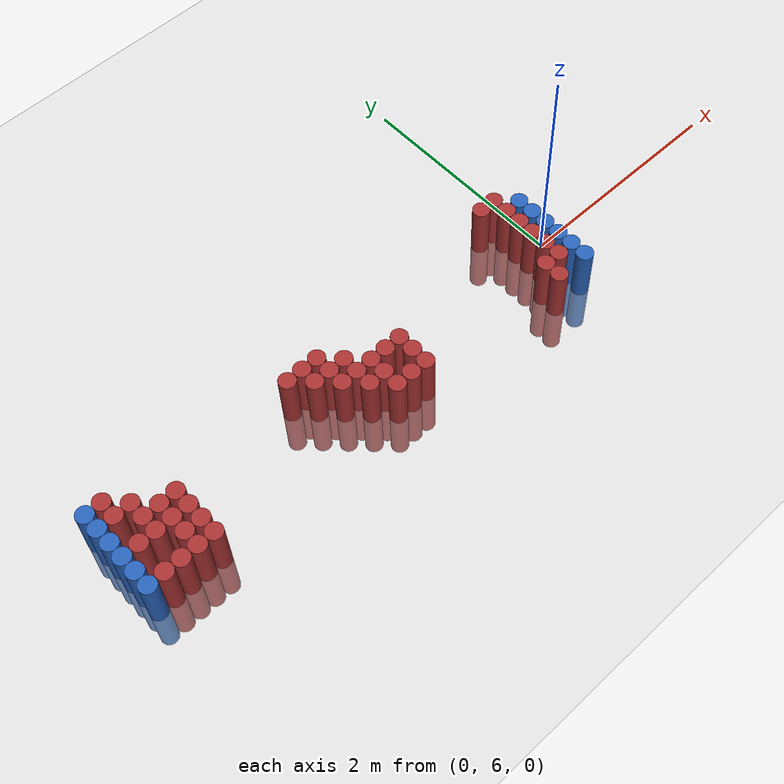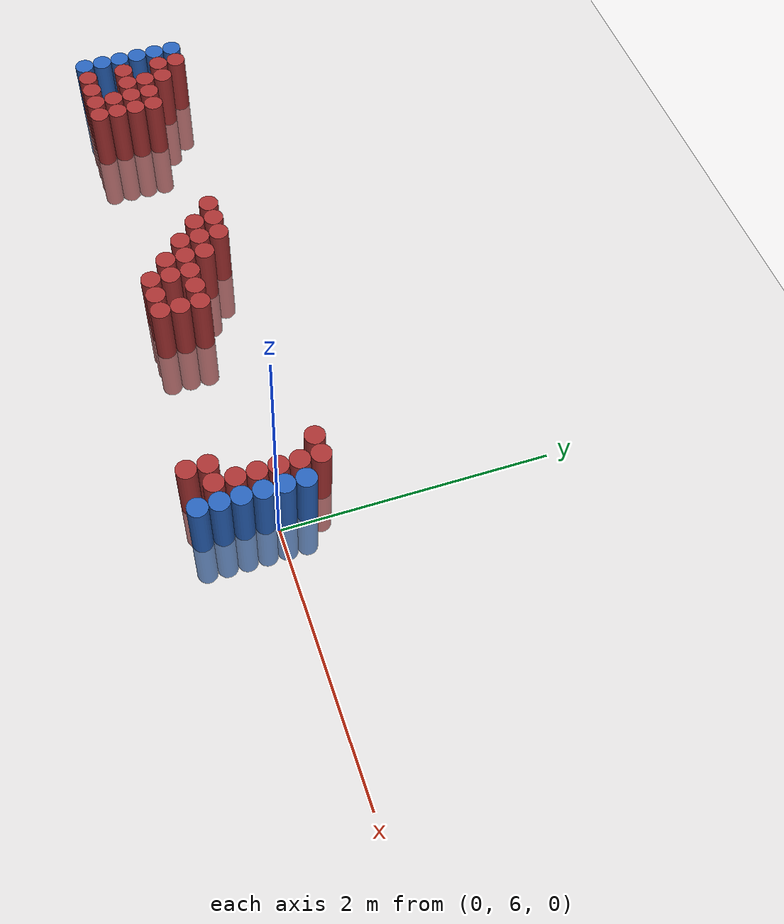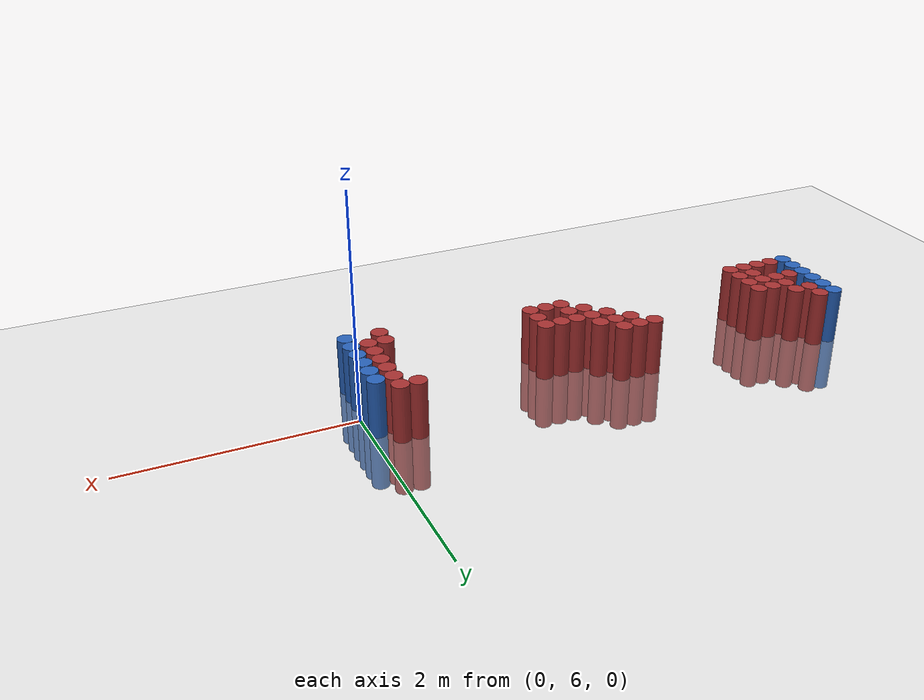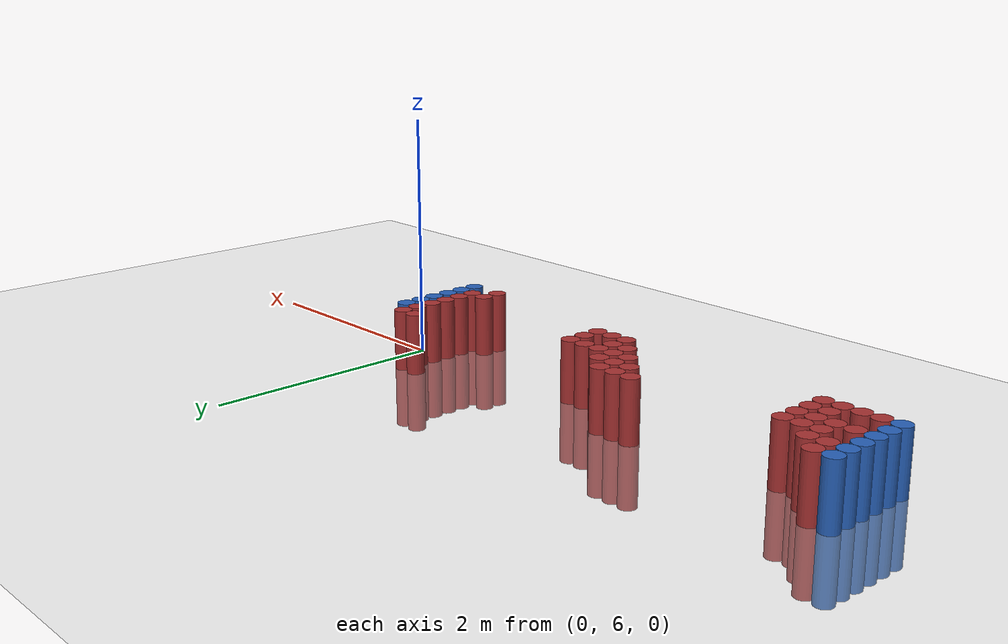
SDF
<sdf version="1.6">
 <world name="default">
  <model name="ground_plane">
   <static>1</static>
   <link name="link">
    <collision name="collision">
     <geometry><plane><normal>0 0 1</normal><size>100 100</size></plane></geometry>
     <surface><friction><ode><mu>100</mu><mu2>50</mu2></ode></friction></surface>
    </collision>
    <visual name="visual">
     <cast_shadows>0</cast_shadows>
     <geometry><plane><normal>0 0 1</normal><size>100 100</size></plane></geometry>
     <material>
      <script><uri>file://media/materials/scripts/gazebo.material</uri><name>Gazebo/Grey</name></script>
     </material>
    </visual>
   </link>
  </model>
  <model name="unit_cylinder_99">
   <static>1</static>
   <pose>-4.425000 5.625000 0.000000 0.000000 0.000000 0.000000</pose>
   <link name="link">
    <inertial>
     <mass>1</mass>
     <inertia><ixx>0.145833</ixx><ixy>0</ixy><ixz>0</ixz><iyy>0.145833</iyy><iyz>0</iyz><izz>0.125</izz></inertia>
    </inertial>
    <collision name="collision">
     <geometry><cylinder><radius>0.075000</radius><length>1</length></cylinder></geometry>
    </collision>
    <visual name="visual">
     <geometry><cylinder><radius>0.075000</radius><length>1</length></cylinder></geometry>
     <material>
      <ambient>0.152000 0.379000 0.720000 1</ambient>
      <diffuse>0.152000 0.379000 0.720000 1</diffuse>
     </material>
     <material>
      <script><name>Gazebo/Grey</name><uri>file://media/materials/scripts/gazebo.material</uri></script>
     </material>
    </visual>
   </link>
  </model>
  <model name="unit_cylinder_100">
   <static>1</static>
   <pose>-4.425000 5.775000 0.000000 0.000000 0.000000 0.000000</pose>
   <link name="link">
    <inertial>
     <mass>1</mass>
     <inertia><ixx>0.145833</ixx><ixy>0</ixy><ixz>0</ixz><iyy>0.145833</iyy><iyz>0</iyz><izz>0.125</izz></inertia>
    </inertial>
    <collision name="collision">
     <geometry><cylinder><radius>0.075000</radius><length>1</length></cylinder></geometry>
    </collision>
    <visual name="visual">
     <geometry><cylinder><radius>0.075000</radius><length>1</length></cylinder></geometry>
     <material>
      <ambient>0.152000 0.379000 0.720000 1</ambient>
      <diffuse>0.152000 0.379000 0.720000 1</diffuse>
     </material>
     <material>
      <script><name>Gazebo/Grey</name><uri>file://media/materials/scripts/gazebo.material</uri></script>
     </material>
    </visual>
   </link>
  </model>
  <model name="unit_cylinder_101">
   <static>1</static>
   <pose>-4.425000 5.925000 0.000000 0.000000 0.000000 0.000000</pose>
   <link name="link">
    <inertial>
     <mass>1</mass>
     <inertia><ixx>0.145833</ixx><ixy>0</ixy><ixz>0</ixz><iyy>0.145833</iyy><iyz>0</iyz><izz>0.125</izz></inertia>
    </inertial>
    <collision name="collision">
     <geometry><cylinder><radius>0.075000</radius><length>1</length></cylinder></geometry>
    </collision>
    <visual name="visual">
     <geometry><cylinder><radius>0.075000</radius><length>1</length></cylinder></geometry>
     <material>
      <ambient>0.152000 0.379000 0.720000 1</ambient>
      <diffuse>0.152000 0.379000 0.720000 1</diffuse>
     </material>
     <material>
      <script><name>Gazebo/Grey</name><uri>file://media/materials/scripts/gazebo.material</uri></script>
     </material>
    </visual>
   </link>
  </model>
  <model name="unit_cylinder_102">
   <static>1</static>
   <pose>-4.425000 6.075000 0.000000 0.000000 0.000000 0.000000</pose>
   <link name="link">
    <inertial>
     <mass>1</mass>
     <inertia><ixx>0.145833</ixx><ixy>0</ixy><ixz>0</ixz><iyy>0.145833</iyy><iyz>0</iyz><izz>0.125</izz></inertia>
    </inertial>
    <collision name="collision">
     <geometry><cylinder><radius>0.075000</radius><length>1</length></cylinder></geometry>
    </collision>
    <visual name="visual">
     <geometry><cylinder><radius>0.075000</radius><length>1</length></cylinder></geometry>
     <material>
      <ambient>0.152000 0.379000 0.720000 1</ambient>
      <diffuse>0.152000 0.379000 0.720000 1</diffuse>
     </material>
     <material>
      <script><name>Gazebo/Grey</name><uri>file://media/materials/scripts/gazebo.material</uri></script>
     </material>
    </visual>
   </link>
  </model>
  <model name="unit_cylinder_103">
   <static>1</static>
   <pose>-4.425000 6.225000 0.000000 0.000000 0.000000 0.000000</pose>
   <link name="link">
    <inertial>
     <mass>1</mass>
     <inertia><ixx>0.145833</ixx><ixy>0</ixy><ixz>0</ixz><iyy>0.145833</iyy><iyz>0</iyz><izz>0.125</izz></inertia>
    </inertial>
    <collision name="collision">
     <geometry><cylinder><radius>0.075000</radius><length>1</length></cylinder></geometry>
    </collision>
    <visual name="visual">
     <geometry><cylinder><radius>0.075000</radius><length>1</length></cylinder></geometry>
     <material>
      <ambient>0.152000 0.379000 0.720000 1</ambient>
      <diffuse>0.152000 0.379000 0.720000 1</diffuse>
     </material>
     <material>
      <script><name>Gazebo/Grey</name><uri>file://media/materials/scripts/gazebo.material</uri></script>
     </material>
    </visual>
   </link>
  </model>
  <model name="unit_cylinder_104">
   <static>1</static>
   <pose>-4.425000 6.375000 0.000000 0.000000 0.000000 0.000000</pose>
   <link name="link">
    <inertial>
     <mass>1</mass>
     <inertia><ixx>0.145833</ixx><ixy>0</ixy><ixz>0</ixz><iyy>0.145833</iyy><iyz>0</iyz><izz>0.125</izz></inertia>
    </inertial>
    <collision name="collision">
     <geometry><cylinder><radius>0.075000</radius><length>1</length></cylinder></geometry>
    </collision>
    <visual name="visual">
     <geometry><cylinder><radius>0.075000</radius><length>1</length></cylinder></geometry>
     <material>
      <ambient>0.152000 0.379000 0.720000 1</ambient>
      <diffuse>0.152000 0.379000 0.720000 1</diffuse>
     </material>
     <material>
      <script><name>Gazebo/Grey</name><uri>file://media/materials/scripts/gazebo.material</uri></script>
     </material>
    </visual>
   </link>
  </model>
  <model name="unit_cylinder_128">
   <static>1</static>
   <pose>-4.275000 5.625000 0.000000 0.000000 0.000000 0.000000</pose>
   <link name="link">
    <inertial>
     <mass>1</mass>
     <inertia><ixx>0.145833</ixx><ixy>0</ixy><ixz>0</ixz><iyy>0.145833</iyy><iyz>0</iyz><izz>0.125</izz></inertia>
    </inertial>
    <collision name="collision">
     <geometry><cylinder><radius>0.075000</radius><length>1</length></cylinder></geometry>
    </collision>
    <visual name="visual">
     <geometry><cylinder><radius>0.075000</radius><length>1</length></cylinder></geometry>
     <material>
      <ambient>0.648000 0.192000 0.192000 1</ambient>
      <diffuse>0.648000 0.192000 0.192000 1</diffuse>
     </material>
     <material>
      <script><name>Gazebo/Grey</name><uri>file://media/materials/scripts/gazebo.material</uri></script>
     </material>
    </visual>
   </link>
  </model>
  <model name="unit_cylinder_129">
   <static>1</static>
   <pose>-4.275000 5.925000 0.000000 0.000000 0.000000 0.000000</pose>
   <link name="link">
    <inertial>
     <mass>1</mass>
     <inertia><ixx>0.145833</ixx><ixy>0</ixy><ixz>0</ixz><iyy>0.145833</iyy><iyz>0</iyz><izz>0.125</izz></inertia>
    </inertial>
    <collision name="collision">
     <geometry><cylinder><radius>0.075000</radius><length>1</length></cylinder></geometry>
    </collision>
    <visual name="visual">
     <geometry><cylinder><radius>0.075000</radius><length>1</length></cylinder></geometry>
     <material>
      <ambient>0.648000 0.192000 0.192000 1</ambient>
      <diffuse>0.648000 0.192000 0.192000 1</diffuse>
     </material>
     <material>
      <script><name>Gazebo/Grey</name><uri>file://media/materials/scripts/gazebo.material</uri></script>
     </material>
    </visual>
   </link>
  </model>
  <model name="unit_cylinder_130">
   <static>1</static>
   <pose>-4.275000 6.225000 0.000000 0.000000 0.000000 0.000000</pose>
   <link name="link">
    <inertial>
     <mass>1</mass>
     <inertia><ixx>0.145833</ixx><ixy>0</ixy><ixz>0</ixz><iyy>0.145833</iyy><iyz>0</iyz><izz>0.125</izz></inertia>
    </inertial>
    <collision name="collision">
     <geometry><cylinder><radius>0.075000</radius><length>1</length></cylinder></geometry>
    </collision>
    <visual name="visual">
     <geometry><cylinder><radius>0.075000</radius><length>1</length></cylinder></geometry>
     <material>
      <ambient>0.648000 0.192000 0.192000 1</ambient>
      <diffuse>0.648000 0.192000 0.192000 1</diffuse>
     </material>
     <material>
      <script><name>Gazebo/Grey</name><uri>file://media/materials/scripts/gazebo.material</uri></script>
     </material>
    </visual>
   </link>
  </model>
  <model name="unit_cylinder_131">
   <static>1</static>
   <pose>-4.275000 6.375000 0.000000 0.000000 0.000000 0.000000</pose>
   <link name="link">
    <inertial>
     <mass>1</mass>
     <inertia><ixx>0.145833</ixx><ixy>0</ixy><ixz>0</ixz><iyy>0.145833</iyy><iyz>0</iyz><izz>0.125</izz></inertia>
    </inertial>
    <collision name="collision">
     <geometry><cylinder><radius>0.075000</radius><length>1</length></cylinder></geometry>
    </collision>
    <visual name="visual">
     <geometry><cylinder><radius>0.075000</radius><length>1</length></cylinder></geometry>
     <material>
      <ambient>0.648000 0.192000 0.192000 1</ambient>
      <diffuse>0.648000 0.192000 0.192000 1</diffuse>
     </material>
     <material>
      <script><name>Gazebo/Grey</name><uri>file://media/materials/scripts/gazebo.material</uri></script>
     </material>
    </visual>
   </link>
  </model>
  <model name="unit_cylinder_151">
   <static>1</static>
   <pose>-4.125000 5.625000 0.000000 0.000000 0.000000 0.000000</pose>
   <link name="link">
    <inertial>
     <mass>1</mass>
     <inertia><ixx>0.145833</ixx><ixy>0</ixy><ixz>0</ixz><iyy>0.145833</iyy><iyz>0</iyz><izz>0.125</izz></inertia>
    </inertial>
    <collision name="collision">
     <geometry><cylinder><radius>0.075000</radius><length>1</length></cylinder></geometry>
    </collision>
    <visual name="visual">
     <geometry><cylinder><radius>0.075000</radius><length>1</length></cylinder></geometry>
     <material>
      <ambient>0.648000 0.192000 0.192000 1</ambient>
      <diffuse>0.648000 0.192000 0.192000 1</diffuse>
     </material>
     <material>
      <script><name>Gazebo/Grey</name><uri>file://media/materials/scripts/gazebo.material</uri></script>
     </material>
    </visual>
   </link>
  </model>
  <model name="unit_cylinder_152">
   <static>1</static>
   <pose>-4.125000 5.925000 0.000000 0.000000 0.000000 0.000000</pose>
   <link name="link">
    <inertial>
     <mass>1</mass>
     <inertia><ixx>0.145833</ixx><ixy>0</ixy><ixz>0</ixz><iyy>0.145833</iyy><iyz>0</iyz><izz>0.125</izz></inertia>
    </inertial>
    <collision name="collision">
     <geometry><cylinder><radius>0.075000</radius><length>1</length></cylinder></geometry>
    </collision>
    <visual name="visual">
     <geometry><cylinder><radius>0.075000</radius><length>1</length></cylinder></geometry>
     <material>
      <ambient>0.648000 0.192000 0.192000 1</ambient>
      <diffuse>0.648000 0.192000 0.192000 1</diffuse>
     </material>
     <material>
      <script><name>Gazebo/Grey</name><uri>file://media/materials/scripts/gazebo.material</uri></script>
     </material>
    </visual>
   </link>
  </model>
  <model name="unit_cylinder_153">
   <static>1</static>
   <pose>-4.125000 6.075000 0.000000 0.000000 0.000000 0.000000</pose>
   <link name="link">
    <inertial>
     <mass>1</mass>
     <inertia><ixx>0.145833</ixx><ixy>0</ixy><ixz>0</ixz><iyy>0.145833</iyy><iyz>0</iyz><izz>0.125</izz></inertia>
    </inertial>
    <collision name="collision">
     <geometry><cylinder><radius>0.075000</radius><length>1</length></cylinder></geometry>
    </collision>
    <visual name="visual">
     <geometry><cylinder><radius>0.075000</radius><length>1</length></cylinder></geometry>
     <material>
      <ambient>0.648000 0.192000 0.192000 1</ambient>
      <diffuse>0.648000 0.192000 0.192000 1</diffuse>
     </material>
     <material>
      <script><name>Gazebo/Grey</name><uri>file://media/materials/scripts/gazebo.material</uri></script>
     </material>
    </visual>
   </link>
  </model>
  <model name="unit_cylinder_154">
   <static>1</static>
   <pose>-4.125000 6.225000 0.000000 0.000000 0.000000 0.000000</pose>
   <link name="link">
    <inertial>
     <mass>1</mass>
     <inertia><ixx>0.145833</ixx><ixy>0</ixy><ixz>0</ixz><iyy>0.145833</iyy><iyz>0</iyz><izz>0.125</izz></inertia>
    </inertial>
    <collision name="collision">
     <geometry><cylinder><radius>0.075000</radius><length>1</length></cylinder></geometry>
    </collision>
    <visual name="visual">
     <geometry><cylinder><radius>0.075000</radius><length>1</length></cylinder></geometry>
     <material>
      <ambient>0.648000 0.192000 0.192000 1</ambient>
      <diffuse>0.648000 0.192000 0.192000 1</diffuse>
     </material>
     <material>
      <script><name>Gazebo/Grey</name><uri>file://media/materials/scripts/gazebo.material</uri></script>
     </material>
    </visual>
   </link>
  </model>
  <model name="unit_cylinder_158">
   <static>1</static>
   <pose>-3.975000 5.625000 0.000000 0.000000 0.000000 0.000000</pose>
   <link name="link">
    <inertial>
     <mass>1</mass>
     <inertia><ixx>0.145833</ixx><ixy>0</ixy><ixz>0</ixz><iyy>0.145833</iyy><iyz>0</iyz><izz>0.125</izz></inertia>
    </inertial>
    <collision name="collision">
     <geometry><cylinder><radius>0.075000</radius><length>1</length></cylinder></geometry>
    </collision>
    <visual name="visual">
     <geometry><cylinder><radius>0.075000</radius><length>1</length></cylinder></geometry>
     <material>
      <ambient>0.648000 0.192000 0.192000 1</ambient>
      <diffuse>0.648000 0.192000 0.192000 1</diffuse>
     </material>
     <material>
      <script><name>Gazebo/Grey</name><uri>file://media/materials/scripts/gazebo.material</uri></script>
     </material>
    </visual>
   </link>
  </model>
  <model name="unit_cylinder_159">
   <static>1</static>
   <pose>-3.975000 5.775000 0.000000 0.000000 0.000000 0.000000</pose>
   <link name="link">
    <inertial>
     <mass>1</mass>
     <inertia><ixx>0.145833</ixx><ixy>0</ixy><ixz>0</ixz><iyy>0.145833</iyy><iyz>0</iyz><izz>0.125</izz></inertia>
    </inertial>
    <collision name="collision">
     <geometry><cylinder><radius>0.075000</radius><length>1</length></cylinder></geometry>
    </collision>
    <visual name="visual">
     <geometry><cylinder><radius>0.075000</radius><length>1</length></cylinder></geometry>
     <material>
      <ambient>0.648000 0.192000 0.192000 1</ambient>
      <diffuse>0.648000 0.192000 0.192000 1</diffuse>
     </material>
     <material>
      <script><name>Gazebo/Grey</name><uri>file://media/materials/scripts/gazebo.material</uri></script>
     </material>
    </visual>
   </link>
  </model>
  <model name="unit_cylinder_160">
   <static>1</static>
   <pose>-3.975000 5.925000 0.000000 0.000000 0.000000 0.000000</pose>
   <link name="link">
    <inertial>
     <mass>1</mass>
     <inertia><ixx>0.145833</ixx><ixy>0</ixy><ixz>0</ixz><iyy>0.145833</iyy><iyz>0</iyz><izz>0.125</izz></inertia>
    </inertial>
    <collision name="collision">
     <geometry><cylinder><radius>0.075000</radius><length>1</length></cylinder></geometry>
    </collision>
    <visual name="visual">
     <geometry><cylinder><radius>0.075000</radius><length>1</length></cylinder></geometry>
     <material>
      <ambient>0.648000 0.192000 0.192000 1</ambient>
      <diffuse>0.648000 0.192000 0.192000 1</diffuse>
     </material>
     <material>
      <script><name>Gazebo/Grey</name><uri>file://media/materials/scripts/gazebo.material</uri></script>
     </material>
    </visual>
   </link>
  </model>
  <model name="unit_cylinder_161">
   <static>1</static>
   <pose>-3.975000 6.075000 0.000000 0.000000 0.000000 0.000000</pose>
   <link name="link">
    <inertial>
     <mass>1</mass>
     <inertia><ixx>0.145833</ixx><ixy>0</ixy><ixz>0</ixz><iyy>0.145833</iyy><iyz>0</iyz><izz>0.125</izz></inertia>
    </inertial>
    <collision name="collision">
     <geometry><cylinder><radius>0.075000</radius><length>1</length></cylinder></geometry>
    </collision>
    <visual name="visual">
     <geometry><cylinder><radius>0.075000</radius><length>1</length></cylinder></geometry>
     <material>
      <ambient>0.648000 0.192000 0.192000 1</ambient>
      <diffuse>0.648000 0.192000 0.192000 1</diffuse>
     </material>
     <material>
      <script><name>Gazebo/Grey</name><uri>file://media/materials/scripts/gazebo.material</uri></script>
     </material>
    </visual>
   </link>
  </model>
  <model name="unit_cylinder_164">
   <static>1</static>
   <pose>-3.825000 5.625000 0.000000 0.000000 0.000000 0.000000</pose>
   <link name="link">
    <inertial>
     <mass>1</mass>
     <inertia><ixx>0.145833</ixx><ixy>0</ixy><ixz>0</ixz><iyy>0.145833</iyy><iyz>0</iyz><izz>0.125</izz></inertia>
    </inertial>
    <collision name="collision">
     <geometry><cylinder><radius>0.075000</radius><length>1</length></cylinder></geometry>
    </collision>
    <visual name="visual">
     <geometry><cylinder><radius>0.075000</radius><length>1</length></cylinder></geometry>
     <material>
      <ambient>0.648000 0.192000 0.192000 1</ambient>
      <diffuse>0.648000 0.192000 0.192000 1</diffuse>
     </material>
     <material>
      <script><name>Gazebo/Grey</name><uri>file://media/materials/scripts/gazebo.material</uri></script>
     </material>
    </visual>
   </link>
  </model>
  <model name="unit_cylinder_165">
   <static>1</static>
   <pose>-3.825000 5.775000 0.000000 0.000000 0.000000 0.000000</pose>
   <link name="link">
    <inertial>
     <mass>1</mass>
     <inertia><ixx>0.145833</ixx><ixy>0</ixy><ixz>0</ixz><iyy>0.145833</iyy><iyz>0</iyz><izz>0.125</izz></inertia>
    </inertial>
    <collision name="collision">
     <geometry><cylinder><radius>0.075000</radius><length>1</length></cylinder></geometry>
    </collision>
    <visual name="visual">
     <geometry><cylinder><radius>0.075000</radius><length>1</length></cylinder></geometry>
     <material>
      <ambient>0.648000 0.192000 0.192000 1</ambient>
      <diffuse>0.648000 0.192000 0.192000 1</diffuse>
     </material>
     <material>
      <script><name>Gazebo/Grey</name><uri>file://media/materials/scripts/gazebo.material</uri></script>
     </material>
    </visual>
   </link>
  </model>
  <model name="unit_cylinder_166">
   <static>1</static>
   <pose>-3.825000 5.925000 0.000000 0.000000 0.000000 0.000000</pose>
   <link name="link">
    <inertial>
     <mass>1</mass>
     <inertia><ixx>0.145833</ixx><ixy>0</ixy><ixz>0</ixz><iyy>0.145833</iyy><iyz>0</iyz><izz>0.125</izz></inertia>
    </inertial>
    <collision name="collision">
     <geometry><cylinder><radius>0.075000</radius><length>1</length></cylinder></geometry>
    </collision>
    <visual name="visual">
     <geometry><cylinder><radius>0.075000</radius><length>1</length></cylinder></geometry>
     <material>
      <ambient>0.648000 0.192000 0.192000 1</ambient>
      <diffuse>0.648000 0.192000 0.192000 1</diffuse>
     </material>
     <material>
      <script><name>Gazebo/Grey</name><uri>file://media/materials/scripts/gazebo.material</uri></script>
     </material>
    </visual>
   </link>
  </model>
  <model name="unit_cylinder_167">
   <static>1</static>
   <pose>-3.825000 6.075000 0.000000 0.000000 0.000000 0.000000</pose>
   <link name="link">
    <inertial>
     <mass>1</mass>
     <inertia><ixx>0.145833</ixx><ixy>0</ixy><ixz>0</ixz><iyy>0.145833</iyy><iyz>0</iyz><izz>0.125</izz></inertia>
    </inertial>
    <collision name="collision">
     <geometry><cylinder><radius>0.075000</radius><length>1</length></cylinder></geometry>
    </collision>
    <visual name="visual">
     <geometry><cylinder><radius>0.075000</radius><length>1</length></cylinder></geometry>
     <material>
      <ambient>0.648000 0.192000 0.192000 1</ambient>
      <diffuse>0.648000 0.192000 0.192000 1</diffuse>
     </material>
     <material>
      <script><name>Gazebo/Grey</name><uri>file://media/materials/scripts/gazebo.material</uri></script>
     </material>
    </visual>
   </link>
  </model>
  <model name="unit_cylinder_187">
   <static>1</static>
   <pose>-2.625000 6.225000 0.000000 0.000000 0.000000 0.000000</pose>
   <link name="link">
    <inertial>
     <mass>1</mass>
     <inertia><ixx>0.145833</ixx><ixy>0</ixy><ixz>0</ixz><iyy>0.145833</iyy><iyz>0</iyz><izz>0.125</izz></inertia>
    </inertial>
    <collision name="collision">
     <geometry><cylinder><radius>0.075000</radius><length>1</length></cylinder></geometry>
    </collision>
    <visual name="visual">
     <geometry><cylinder><radius>0.075000</radius><length>1</length></cylinder></geometry>
     <material>
      <ambient>0.648000 0.192000 0.192000 1</ambient>
      <diffuse>0.648000 0.192000 0.192000 1</diffuse>
     </material>
     <material>
      <script><name>Gazebo/Grey</name><uri>file://media/materials/scripts/gazebo.material</uri></script>
     </material>
    </visual>
   </link>
  </model>
  <model name="unit_cylinder_198">
   <static>1</static>
   <pose>-2.475000 6.075000 0.000000 0.000000 0.000000 0.000000</pose>
   <link name="link">
    <inertial>
     <mass>1</mass>
     <inertia><ixx>0.145833</ixx><ixy>0</ixy><ixz>0</ixz><iyy>0.145833</iyy><iyz>0</iyz><izz>0.125</izz></inertia>
    </inertial>
    <collision name="collision">
     <geometry><cylinder><radius>0.075000</radius><length>1</length></cylinder></geometry>
    </collision>
    <visual name="visual">
     <geometry><cylinder><radius>0.075000</radius><length>1</length></cylinder></geometry>
     <material>
      <ambient>0.648000 0.192000 0.192000 1</ambient>
      <diffuse>0.648000 0.192000 0.192000 1</diffuse>
     </material>
     <material>
      <script><name>Gazebo/Grey</name><uri>file://media/materials/scripts/gazebo.material</uri></script>
     </material>
    </visual>
   </link>
  </model>
  <model name="unit_cylinder_199">
   <static>1</static>
   <pose>-2.475000 6.225000 0.000000 0.000000 0.000000 0.000000</pose>
   <link name="link">
    <inertial>
     <mass>1</mass>
     <inertia><ixx>0.145833</ixx><ixy>0</ixy><ixz>0</ixz><iyy>0.145833</iyy><iyz>0</iyz><izz>0.125</izz></inertia>
    </inertial>
    <collision name="collision">
     <geometry><cylinder><radius>0.075000</radius><length>1</length></cylinder></geometry>
    </collision>
    <visual name="visual">
     <geometry><cylinder><radius>0.075000</radius><length>1</length></cylinder></geometry>
     <material>
      <ambient>0.648000 0.192000 0.192000 1</ambient>
      <diffuse>0.648000 0.192000 0.192000 1</diffuse>
     </material>
     <material>
      <script><name>Gazebo/Grey</name><uri>file://media/materials/scripts/gazebo.material</uri></script>
     </material>
    </visual>
   </link>
  </model>
  <model name="unit_cylinder_206">
   <static>1</static>
   <pose>-2.325000 5.925000 0.000000 0.000000 0.000000 0.000000</pose>
   <link name="link">
    <inertial>
     <mass>1</mass>
     <inertia><ixx>0.145833</ixx><ixy>0</ixy><ixz>0</ixz><iyy>0.145833</iyy><iyz>0</iyz><izz>0.125</izz></inertia>
    </inertial>
    <collision name="collision">
     <geometry><cylinder><radius>0.075000</radius><length>1</length></cylinder></geometry>
    </collision>
    <visual name="visual">
     <geometry><cylinder><radius>0.075000</radius><length>1</length></cylinder></geometry>
     <material>
      <ambient>0.648000 0.192000 0.192000 1</ambient>
      <diffuse>0.648000 0.192000 0.192000 1</diffuse>
     </material>
     <material>
      <script><name>Gazebo/Grey</name><uri>file://media/materials/scripts/gazebo.material</uri></script>
     </material>
    </visual>
   </link>
  </model>
  <model name="unit_cylinder_207">
   <static>1</static>
   <pose>-2.325000 6.075000 0.000000 0.000000 0.000000 0.000000</pose>
   <link name="link">
    <inertial>
     <mass>1</mass>
     <inertia><ixx>0.145833</ixx><ixy>0</ixy><ixz>0</ixz><iyy>0.145833</iyy><iyz>0</iyz><izz>0.125</izz></inertia>
    </inertial>
    <collision name="collision">
     <geometry><cylinder><radius>0.075000</radius><length>1</length></cylinder></geometry>
    </collision>
    <visual name="visual">
     <geometry><cylinder><radius>0.075000</radius><length>1</length></cylinder></geometry>
     <material>
      <ambient>0.648000 0.192000 0.192000 1</ambient>
      <diffuse>0.648000 0.192000 0.192000 1</diffuse>
     </material>
     <material>
      <script><name>Gazebo/Grey</name><uri>file://media/materials/scripts/gazebo.material</uri></script>
     </material>
    </visual>
   </link>
  </model>
  <model name="unit_cylinder_208">
   <static>1</static>
   <pose>-2.325000 6.225000 0.000000 0.000000 0.000000 0.000000</pose>
   <link name="link">
    <inertial>
     <mass>1</mass>
     <inertia><ixx>0.145833</ixx><ixy>0</ixy><ixz>0</ixz><iyy>0.145833</iyy><iyz>0</iyz><izz>0.125</izz></inertia>
    </inertial>
    <collision name="collision">
     <geometry><cylinder><radius>0.075000</radius><length>1</length></cylinder></geometry>
    </collision>
    <visual name="visual">
     <geometry><cylinder><radius>0.075000</radius><length>1</length></cylinder></geometry>
     <material>
      <ambient>0.648000 0.192000 0.192000 1</ambient>
      <diffuse>0.648000 0.192000 0.192000 1</diffuse>
     </material>
     <material>
      <script><name>Gazebo/Grey</name><uri>file://media/materials/scripts/gazebo.material</uri></script>
     </material>
    </visual>
   </link>
  </model>
  <model name="unit_cylinder_215">
   <static>1</static>
   <pose>-2.175000 5.775000 0.000000 0.000000 0.000000 0.000000</pose>
   <link name="link">
    <inertial>
     <mass>1</mass>
     <inertia><ixx>0.145833</ixx><ixy>0</ixy><ixz>0</ixz><iyy>0.145833</iyy><iyz>0</iyz><izz>0.125</izz></inertia>
    </inertial>
    <collision name="collision">
     <geometry><cylinder><radius>0.075000</radius><length>1</length></cylinder></geometry>
    </collision>
    <visual name="visual">
     <geometry><cylinder><radius>0.075000</radius><length>1</length></cylinder></geometry>
     <material>
      <ambient>0.648000 0.192000 0.192000 1</ambient>
      <diffuse>0.648000 0.192000 0.192000 1</diffuse>
     </material>
     <material>
      <script><name>Gazebo/Grey</name><uri>file://media/materials/scripts/gazebo.material</uri></script>
     </material>
    </visual>
   </link>
  </model>
  <model name="unit_cylinder_216">
   <static>1</static>
   <pose>-2.175000 5.925000 0.000000 0.000000 0.000000 0.000000</pose>
   <link name="link">
    <inertial>
     <mass>1</mass>
     <inertia><ixx>0.145833</ixx><ixy>0</ixy><ixz>0</ixz><iyy>0.145833</iyy><iyz>0</iyz><izz>0.125</izz></inertia>
    </inertial>
    <collision name="collision">
     <geometry><cylinder><radius>0.075000</radius><length>1</length></cylinder></geometry>
    </collision>
    <visual name="visual">
     <geometry><cylinder><radius>0.075000</radius><length>1</length></cylinder></geometry>
     <material>
      <ambient>0.648000 0.192000 0.192000 1</ambient>
      <diffuse>0.648000 0.192000 0.192000 1</diffuse>
     </material>
     <material>
      <script><name>Gazebo/Grey</name><uri>file://media/materials/scripts/gazebo.material</uri></script>
     </material>
    </visual>
   </link>
  </model>
  <model name="unit_cylinder_217">
   <static>1</static>
   <pose>-2.175000 6.075000 0.000000 0.000000 0.000000 0.000000</pose>
   <link name="link">
    <inertial>
     <mass>1</mass>
     <inertia><ixx>0.145833</ixx><ixy>0</ixy><ixz>0</ixz><iyy>0.145833</iyy><iyz>0</iyz><izz>0.125</izz></inertia>
    </inertial>
    <collision name="collision">
     <geometry><cylinder><radius>0.075000</radius><length>1</length></cylinder></geometry>
    </collision>
    <visual name="visual">
     <geometry><cylinder><radius>0.075000</radius><length>1</length></cylinder></geometry>
     <material>
      <ambient>0.648000 0.192000 0.192000 1</ambient>
      <diffuse>0.648000 0.192000 0.192000 1</diffuse>
     </material>
     <material>
      <script><name>Gazebo/Grey</name><uri>file://media/materials/scripts/gazebo.material</uri></script>
     </material>
    </visual>
   </link>
  </model>
  <model name="unit_cylinder_221">
   <static>1</static>
   <pose>-2.025000 5.625000 0.000000 0.000000 0.000000 0.000000</pose>
   <link name="link">
    <inertial>
     <mass>1</mass>
     <inertia><ixx>0.145833</ixx><ixy>0</ixy><ixz>0</ixz><iyy>0.145833</iyy><iyz>0</iyz><izz>0.125</izz></inertia>
    </inertial>
    <collision name="collision">
     <geometry><cylinder><radius>0.075000</radius><length>1</length></cylinder></geometry>
    </collision>
    <visual name="visual">
     <geometry><cylinder><radius>0.075000</radius><length>1</length></cylinder></geometry>
     <material>
      <ambient>0.648000 0.192000 0.192000 1</ambient>
      <diffuse>0.648000 0.192000 0.192000 1</diffuse>
     </material>
     <material>
      <script><name>Gazebo/Grey</name><uri>file://media/materials/scripts/gazebo.material</uri></script>
     </material>
    </visual>
   </link>
  </model>
  <model name="unit_cylinder_222">
   <static>1</static>
   <pose>-2.025000 5.775000 0.000000 0.000000 0.000000 0.000000</pose>
   <link name="link">
    <inertial>
     <mass>1</mass>
     <inertia><ixx>0.145833</ixx><ixy>0</ixy><ixz>0</ixz><iyy>0.145833</iyy><iyz>0</iyz><izz>0.125</izz></inertia>
    </inertial>
    <collision name="collision">
     <geometry><cylinder><radius>0.075000</radius><length>1</length></cylinder></geometry>
    </collision>
    <visual name="visual">
     <geometry><cylinder><radius>0.075000</radius><length>1</length></cylinder></geometry>
     <material>
      <ambient>0.648000 0.192000 0.192000 1</ambient>
      <diffuse>0.648000 0.192000 0.192000 1</diffuse>
     </material>
     <material>
      <script><name>Gazebo/Grey</name><uri>file://media/materials/scripts/gazebo.material</uri></script>
     </material>
    </visual>
   </link>
  </model>
  <model name="unit_cylinder_223">
   <static>1</static>
   <pose>-2.025000 5.925000 0.000000 0.000000 0.000000 0.000000</pose>
   <link name="link">
    <inertial>
     <mass>1</mass>
     <inertia><ixx>0.145833</ixx><ixy>0</ixy><ixz>0</ixz><iyy>0.145833</iyy><iyz>0</iyz><izz>0.125</izz></inertia>
    </inertial>
    <collision name="collision">
     <geometry><cylinder><radius>0.075000</radius><length>1</length></cylinder></geometry>
    </collision>
    <visual name="visual">
     <geometry><cylinder><radius>0.075000</radius><length>1</length></cylinder></geometry>
     <material>
      <ambient>0.648000 0.192000 0.192000 1</ambient>
      <diffuse>0.648000 0.192000 0.192000 1</diffuse>
     </material>
     <material>
      <script><name>Gazebo/Grey</name><uri>file://media/materials/scripts/gazebo.material</uri></script>
     </material>
    </visual>
   </link>
  </model>
  <model name="unit_cylinder_227">
   <static>1</static>
   <pose>-1.875000 5.625000 0.000000 0.000000 0.000000 0.000000</pose>
   <link name="link">
    <inertial>
     <mass>1</mass>
     <inertia><ixx>0.145833</ixx><ixy>0</ixy><ixz>0</ixz><iyy>0.145833</iyy><iyz>0</iyz><izz>0.125</izz></inertia>
    </inertial>
    <collision name="collision">
     <geometry><cylinder><radius>0.075000</radius><length>1</length></cylinder></geometry>
    </collision>
    <visual name="visual">
     <geometry><cylinder><radius>0.075000</radius><length>1</length></cylinder></geometry>
     <material>
      <ambient>0.648000 0.192000 0.192000 1</ambient>
      <diffuse>0.648000 0.192000 0.192000 1</diffuse>
     </material>
     <material>
      <script><name>Gazebo/Grey</name><uri>file://media/materials/scripts/gazebo.material</uri></script>
     </material>
    </visual>
   </link>
  </model>
  <model name="unit_cylinder_228">
   <static>1</static>
   <pose>-1.875000 5.925000 0.000000 0.000000 0.000000 0.000000</pose>
   <link name="link">
    <inertial>
     <mass>1</mass>
     <inertia><ixx>0.145833</ixx><ixy>0</ixy><ixz>0</ixz><iyy>0.145833</iyy><iyz>0</iyz><izz>0.125</izz></inertia>
    </inertial>
    <collision name="collision">
     <geometry><cylinder><radius>0.075000</radius><length>1</length></cylinder></geometry>
    </collision>
    <visual name="visual">
     <geometry><cylinder><radius>0.075000</radius><length>1</length></cylinder></geometry>
     <material>
      <ambient>0.648000 0.192000 0.192000 1</ambient>
      <diffuse>0.648000 0.192000 0.192000 1</diffuse>
     </material>
     <material>
      <script><name>Gazebo/Grey</name><uri>file://media/materials/scripts/gazebo.material</uri></script>
     </material>
    </visual>
   </link>
  </model>
  <model name="unit_cylinder_231">
   <static>1</static>
   <pose>-1.725000 5.625000 0.000000 0.000000 0.000000 0.000000</pose>
   <link name="link">
    <inertial>
     <mass>1</mass>
     <inertia><ixx>0.145833</ixx><ixy>0</ixy><ixz>0</ixz><iyy>0.145833</iyy><iyz>0</iyz><izz>0.125</izz></inertia>
    </inertial>
    <collision name="collision">
     <geometry><cylinder><radius>0.075000</radius><length>1</length></cylinder></geometry>
    </collision>
    <visual name="visual">
     <geometry><cylinder><radius>0.075000</radius><length>1</length></cylinder></geometry>
     <material>
      <ambient>0.648000 0.192000 0.192000 1</ambient>
      <diffuse>0.648000 0.192000 0.192000 1</diffuse>
     </material>
     <material>
      <script><name>Gazebo/Grey</name><uri>file://media/materials/scripts/gazebo.material</uri></script>
     </material>
    </visual>
   </link>
  </model>
  <model name="unit_cylinder_232">
   <static>1</static>
   <pose>-1.725000 5.775000 0.000000 0.000000 0.000000 0.000000</pose>
   <link name="link">
    <inertial>
     <mass>1</mass>
     <inertia><ixx>0.145833</ixx><ixy>0</ixy><ixz>0</ixz><iyy>0.145833</iyy><iyz>0</iyz><izz>0.125</izz></inertia>
    </inertial>
    <collision name="collision">
     <geometry><cylinder><radius>0.075000</radius><length>1</length></cylinder></geometry>
    </collision>
    <visual name="visual">
     <geometry><cylinder><radius>0.075000</radius><length>1</length></cylinder></geometry>
     <material>
      <ambient>0.648000 0.192000 0.192000 1</ambient>
      <diffuse>0.648000 0.192000 0.192000 1</diffuse>
     </material>
     <material>
      <script><name>Gazebo/Grey</name><uri>file://media/materials/scripts/gazebo.material</uri></script>
     </material>
    </visual>
   </link>
  </model>
  <model name="unit_cylinder_233">
   <static>1</static>
   <pose>-1.725000 5.925000 0.000000 0.000000 0.000000 0.000000</pose>
   <link name="link">
    <inertial>
     <mass>1</mass>
     <inertia><ixx>0.145833</ixx><ixy>0</ixy><ixz>0</ixz><iyy>0.145833</iyy><iyz>0</iyz><izz>0.125</izz></inertia>
    </inertial>
    <collision name="collision">
     <geometry><cylinder><radius>0.075000</radius><length>1</length></cylinder></geometry>
    </collision>
    <visual name="visual">
     <geometry><cylinder><radius>0.075000</radius><length>1</length></cylinder></geometry>
     <material>
      <ambient>0.648000 0.192000 0.192000 1</ambient>
      <diffuse>0.648000 0.192000 0.192000 1</diffuse>
     </material>
     <material>
      <script><name>Gazebo/Grey</name><uri>file://media/materials/scripts/gazebo.material</uri></script>
     </material>
    </visual>
   </link>
  </model>
  <model name="unit_cylinder_268">
   <static>1</static>
   <pose>-0.375000 5.475000 0.000000 0.000000 0.000000 0.000000</pose>
   <link name="link">
    <inertial>
     <mass>1</mass>
     <inertia><ixx>0.145833</ixx><ixy>0</ixy><ixz>0</ixz><iyy>0.145833</iyy><iyz>0</iyz><izz>0.125</izz></inertia>
    </inertial>
    <collision name="collision">
     <geometry><cylinder><radius>0.075000</radius><length>1</length></cylinder></geometry>
    </collision>
    <visual name="visual">
     <geometry><cylinder><radius>0.075000</radius><length>1</length></cylinder></geometry>
     <material>
      <ambient>0.648000 0.192000 0.192000 1</ambient>
      <diffuse>0.648000 0.192000 0.192000 1</diffuse>
     </material>
     <material>
      <script><name>Gazebo/Grey</name><uri>file://media/materials/scripts/gazebo.material</uri></script>
     </material>
    </visual>
   </link>
  </model>
  <model name="unit_cylinder_269">
   <static>1</static>
   <pose>-0.375000 5.625000 0.000000 0.000000 0.000000 0.000000</pose>
   <link name="link">
    <inertial>
     <mass>1</mass>
     <inertia><ixx>0.145833</ixx><ixy>0</ixy><ixz>0</ixz><iyy>0.145833</iyy><iyz>0</iyz><izz>0.125</izz></inertia>
    </inertial>
    <collision name="collision">
     <geometry><cylinder><radius>0.075000</radius><length>1</length></cylinder></geometry>
    </collision>
    <visual name="visual">
     <geometry><cylinder><radius>0.075000</radius><length>1</length></cylinder></geometry>
     <material>
      <ambient>0.648000 0.192000 0.192000 1</ambient>
      <diffuse>0.648000 0.192000 0.192000 1</diffuse>
     </material>
     <material>
      <script><name>Gazebo/Grey</name><uri>file://media/materials/scripts/gazebo.material</uri></script>
     </material>
    </visual>
   </link>
  </model>
  <model name="unit_cylinder_270">
   <static>1</static>
   <pose>-0.375000 6.375000 0.000000 0.000000 0.000000 0.000000</pose>
   <link name="link">
    <inertial>
     <mass>1</mass>
     <inertia><ixx>0.145833</ixx><ixy>0</ixy><ixz>0</ixz><iyy>0.145833</iyy><iyz>0</iyz><izz>0.125</izz></inertia>
    </inertial>
    <collision name="collision">
     <geometry><cylinder><radius>0.075000</radius><length>1</length></cylinder></geometry>
    </collision>
    <visual name="visual">
     <geometry><cylinder><radius>0.075000</radius><length>1</length></cylinder></geometry>
     <material>
      <ambient>0.648000 0.192000 0.192000 1</ambient>
      <diffuse>0.648000 0.192000 0.192000 1</diffuse>
     </material>
     <material>
      <script><name>Gazebo/Grey</name><uri>file://media/materials/scripts/gazebo.material</uri></script>
     </material>
    </visual>
   </link>
  </model>
  <model name="unit_cylinder_277">
   <static>1</static>
   <pose>-0.225000 5.625000 0.000000 0.000000 0.000000 0.000000</pose>
   <link name="link">
    <inertial>
     <mass>1</mass>
     <inertia><ixx>0.145833</ixx><ixy>0</ixy><ixz>0</ixz><iyy>0.145833</iyy><iyz>0</iyz><izz>0.125</izz></inertia>
    </inertial>
    <collision name="collision">
     <geometry><cylinder><radius>0.075000</radius><length>1</length></cylinder></geometry>
    </collision>
    <visual name="visual">
     <geometry><cylinder><radius>0.075000</radius><length>1</length></cylinder></geometry>
     <material>
      <ambient>0.648000 0.192000 0.192000 1</ambient>
      <diffuse>0.648000 0.192000 0.192000 1</diffuse>
     </material>
     <material>
      <script><name>Gazebo/Grey</name><uri>file://media/materials/scripts/gazebo.material</uri></script>
     </material>
    </visual>
   </link>
  </model>
  <model name="unit_cylinder_278">
   <static>1</static>
   <pose>-0.225000 5.775000 0.000000 0.000000 0.000000 0.000000</pose>
   <link name="link">
    <inertial>
     <mass>1</mass>
     <inertia><ixx>0.145833</ixx><ixy>0</ixy><ixz>0</ixz><iyy>0.145833</iyy><iyz>0</iyz><izz>0.125</izz></inertia>
    </inertial>
    <collision name="collision">
     <geometry><cylinder><radius>0.075000</radius><length>1</length></cylinder></geometry>
    </collision>
    <visual name="visual">
     <geometry><cylinder><radius>0.075000</radius><length>1</length></cylinder></geometry>
     <material>
      <ambient>0.648000 0.192000 0.192000 1</ambient>
      <diffuse>0.648000 0.192000 0.192000 1</diffuse>
     </material>
     <material>
      <script><name>Gazebo/Grey</name><uri>file://media/materials/scripts/gazebo.material</uri></script>
     </material>
    </visual>
   </link>
  </model>
  <model name="unit_cylinder_279">
   <static>1</static>
   <pose>-0.225000 5.925000 0.000000 0.000000 0.000000 0.000000</pose>
   <link name="link">
    <inertial>
     <mass>1</mass>
     <inertia><ixx>0.145833</ixx><ixy>0</ixy><ixz>0</ixz><iyy>0.145833</iyy><iyz>0</iyz><izz>0.125</izz></inertia>
    </inertial>
    <collision name="collision">
     <geometry><cylinder><radius>0.075000</radius><length>1</length></cylinder></geometry>
    </collision>
    <visual name="visual">
     <geometry><cylinder><radius>0.075000</radius><length>1</length></cylinder></geometry>
     <material>
      <ambient>0.648000 0.192000 0.192000 1</ambient>
      <diffuse>0.648000 0.192000 0.192000 1</diffuse>
     </material>
     <material>
      <script><name>Gazebo/Grey</name><uri>file://media/materials/scripts/gazebo.material</uri></script>
     </material>
    </visual>
   </link>
  </model>
  <model name="unit_cylinder_280">
   <static>1</static>
   <pose>-0.225000 6.075000 0.000000 0.000000 0.000000 0.000000</pose>
   <link name="link">
    <inertial>
     <mass>1</mass>
     <inertia><ixx>0.145833</ixx><ixy>0</ixy><ixz>0</ixz><iyy>0.145833</iyy><iyz>0</iyz><izz>0.125</izz></inertia>
    </inertial>
    <collision name="collision">
     <geometry><cylinder><radius>0.075000</radius><length>1</length></cylinder></geometry>
    </collision>
    <visual name="visual">
     <geometry><cylinder><radius>0.075000</radius><length>1</length></cylinder></geometry>
     <material>
      <ambient>0.648000 0.192000 0.192000 1</ambient>
      <diffuse>0.648000 0.192000 0.192000 1</diffuse>
     </material>
     <material>
      <script><name>Gazebo/Grey</name><uri>file://media/materials/scripts/gazebo.material</uri></script>
     </material>
    </visual>
   </link>
  </model>
  <model name="unit_cylinder_281">
   <static>1</static>
   <pose>-0.225000 6.225000 0.000000 0.000000 0.000000 0.000000</pose>
   <link name="link">
    <inertial>
     <mass>1</mass>
     <inertia><ixx>0.145833</ixx><ixy>0</ixy><ixz>0</ixz><iyy>0.145833</iyy><iyz>0</iyz><izz>0.125</izz></inertia>
    </inertial>
    <collision name="collision">
     <geometry><cylinder><radius>0.075000</radius><length>1</length></cylinder></geometry>
    </collision>
    <visual name="visual">
     <geometry><cylinder><radius>0.075000</radius><length>1</length></cylinder></geometry>
     <material>
      <ambient>0.648000 0.192000 0.192000 1</ambient>
      <diffuse>0.648000 0.192000 0.192000 1</diffuse>
     </material>
     <material>
      <script><name>Gazebo/Grey</name><uri>file://media/materials/scripts/gazebo.material</uri></script>
     </material>
    </visual>
   </link>
  </model>
  <model name="unit_cylinder_282">
   <static>1</static>
   <pose>-0.225000 6.375000 0.000000 0.000000 0.000000 0.000000</pose>
   <link name="link">
    <inertial>
     <mass>1</mass>
     <inertia><ixx>0.145833</ixx><ixy>0</ixy><ixz>0</ixz><iyy>0.145833</iyy><iyz>0</iyz><izz>0.125</izz></inertia>
    </inertial>
    <collision name="collision">
     <geometry><cylinder><radius>0.075000</radius><length>1</length></cylinder></geometry>
    </collision>
    <visual name="visual">
     <geometry><cylinder><radius>0.075000</radius><length>1</length></cylinder></geometry>
     <material>
      <ambient>0.648000 0.192000 0.192000 1</ambient>
      <diffuse>0.648000 0.192000 0.192000 1</diffuse>
     </material>
     <material>
      <script><name>Gazebo/Grey</name><uri>file://media/materials/scripts/gazebo.material</uri></script>
     </material>
    </visual>
   </link>
  </model>
  <model name="unit_cylinder_297">
   <static>1</static>
   <pose>-0.075000 5.475000 0.000000 0.000000 0.000000 0.000000</pose>
   <link name="link">
    <inertial>
     <mass>1</mass>
     <inertia><ixx>0.145833</ixx><ixy>0</ixy><ixz>0</ixz><iyy>0.145833</iyy><iyz>0</iyz><izz>0.125</izz></inertia>
    </inertial>
    <collision name="collision">
     <geometry><cylinder><radius>0.075000</radius><length>1</length></cylinder></geometry>
    </collision>
    <visual name="visual">
     <geometry><cylinder><radius>0.075000</radius><length>1</length></cylinder></geometry>
     <material>
      <ambient>0.152000 0.379000 0.720000 1</ambient>
      <diffuse>0.152000 0.379000 0.720000 1</diffuse>
     </material>
     <material>
      <script><name>Gazebo/Grey</name><uri>file://media/materials/scripts/gazebo.material</uri></script>
     </material>
    </visual>
   </link>
  </model>
  <model name="unit_cylinder_298">
   <static>1</static>
   <pose>-0.075000 5.625000 0.000000 0.000000 0.000000 0.000000</pose>
   <link name="link">
    <inertial>
     <mass>1</mass>
     <inertia><ixx>0.145833</ixx><ixy>0</ixy><ixz>0</ixz><iyy>0.145833</iyy><iyz>0</iyz><izz>0.125</izz></inertia>
    </inertial>
    <collision name="collision">
     <geometry><cylinder><radius>0.075000</radius><length>1</length></cylinder></geometry>
    </collision>
    <visual name="visual">
     <geometry><cylinder><radius>0.075000</radius><length>1</length></cylinder></geometry>
     <material>
      <ambient>0.152000 0.379000 0.720000 1</ambient>
      <diffuse>0.152000 0.379000 0.720000 1</diffuse>
     </material>
     <material>
      <script><name>Gazebo/Grey</name><uri>file://media/materials/scripts/gazebo.material</uri></script>
     </material>
    </visual>
   </link>
  </model>
  <model name="unit_cylinder_299">
   <static>1</static>
   <pose>-0.075000 5.775000 0.000000 0.000000 0.000000 0.000000</pose>
   <link name="link">
    <inertial>
     <mass>1</mass>
     <inertia><ixx>0.145833</ixx><ixy>0</ixy><ixz>0</ixz><iyy>0.145833</iyy><iyz>0</iyz><izz>0.125</izz></inertia>
    </inertial>
    <collision name="collision">
     <geometry><cylinder><radius>0.075000</radius><length>1</length></cylinder></geometry>
    </collision>
    <visual name="visual">
     <geometry><cylinder><radius>0.075000</radius><length>1</length></cylinder></geometry>
     <material>
      <ambient>0.152000 0.379000 0.720000 1</ambient>
      <diffuse>0.152000 0.379000 0.720000 1</diffuse>
     </material>
     <material>
      <script><name>Gazebo/Grey</name><uri>file://media/materials/scripts/gazebo.material</uri></script>
     </material>
    </visual>
   </link>
  </model>
  <model name="unit_cylinder_300">
   <static>1</static>
   <pose>-0.075000 5.925000 0.000000 0.000000 0.000000 0.000000</pose>
   <link name="link">
    <inertial>
     <mass>1</mass>
     <inertia><ixx>0.145833</ixx><ixy>0</ixy><ixz>0</ixz><iyy>0.145833</iyy><iyz>0</iyz><izz>0.125</izz></inertia>
    </inertial>
    <collision name="collision">
     <geometry><cylinder><radius>0.075000</radius><length>1</length></cylinder></geometry>
    </collision>
    <visual name="visual">
     <geometry><cylinder><radius>0.075000</radius><length>1</length></cylinder></geometry>
     <material>
      <ambient>0.152000 0.379000 0.720000 1</ambient>
      <diffuse>0.152000 0.379000 0.720000 1</diffuse>
     </material>
     <material>
      <script><name>Gazebo/Grey</name><uri>file://media/materials/scripts/gazebo.material</uri></script>
     </material>
    </visual>
   </link>
  </model>
  <model name="unit_cylinder_301">
   <static>1</static>
   <pose>-0.075000 6.075000 0.000000 0.000000 0.000000 0.000000</pose>
   <link name="link">
    <inertial>
     <mass>1</mass>
     <inertia><ixx>0.145833</ixx><ixy>0</ixy><ixz>0</ixz><iyy>0.145833</iyy><iyz>0</iyz><izz>0.125</izz></inertia>
    </inertial>
    <collision name="collision">
     <geometry><cylinder><radius>0.075000</radius><length>1</length></cylinder></geometry>
    </collision>
    <visual name="visual">
     <geometry><cylinder><radius>0.075000</radius><length>1</length></cylinder></geometry>
     <material>
      <ambient>0.152000 0.379000 0.720000 1</ambient>
      <diffuse>0.152000 0.379000 0.720000 1</diffuse>
     </material>
     <material>
      <script><name>Gazebo/Grey</name><uri>file://media/materials/scripts/gazebo.material</uri></script>
     </material>
    </visual>
   </link>
  </model>
  <model name="unit_cylinder_302">
   <static>1</static>
   <pose>-0.075000 6.225000 0.000000 0.000000 0.000000 0.000000</pose>
   <link name="link">
    <inertial>
     <mass>1</mass>
     <inertia><ixx>0.145833</ixx><ixy>0</ixy><ixz>0</ixz><iyy>0.145833</iyy><iyz>0</iyz><izz>0.125</izz></inertia>
    </inertial>
    <collision name="collision">
     <geometry><cylinder><radius>0.075000</radius><length>1</length></cylinder></geometry>
    </collision>
    <visual name="visual">
     <geometry><cylinder><radius>0.075000</radius><length>1</length></cylinder></geometry>
     <material>
      <ambient>0.152000 0.379000 0.720000 1</ambient>
      <diffuse>0.152000 0.379000 0.720000 1</diffuse>
     </material>
     <material>
      <script><name>Gazebo/Grey</name><uri>file://media/materials/scripts/gazebo.material</uri></script>
     </material>
    </visual>
   </link>
  </model>
 </world>
</sdf>
